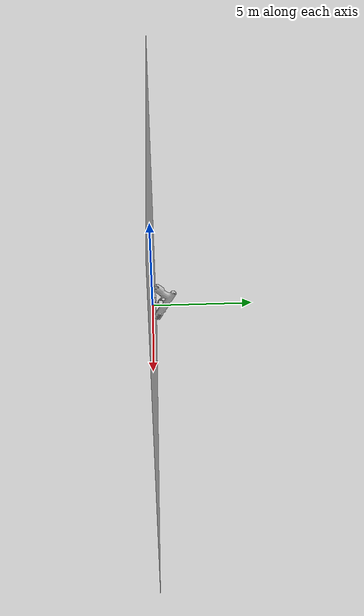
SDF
<?xml version="1.0" ?>
<sdf version="1.6">
  <model name="9_mm">
    <static>true</static>
    <link name="link">
      <visual name="visual">
        <geometry>
          <mesh>

             <uri>model://9_mm/meshes/9_mm.obj</uri>
             <scale>0.01 0.01 0.01</scale>

          </mesh>
        </geometry>
      </visual>
    </link>
  </model>
</sdf>
